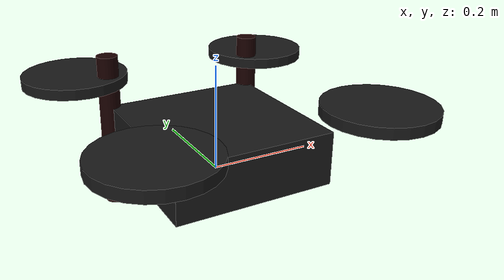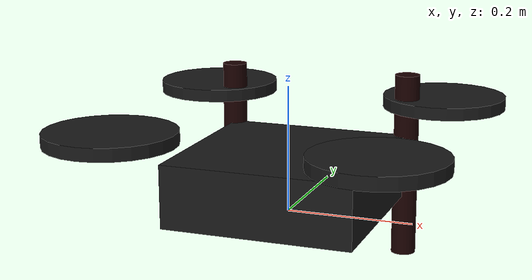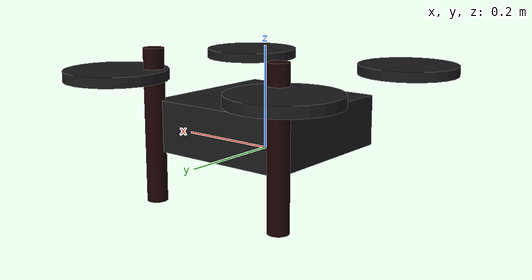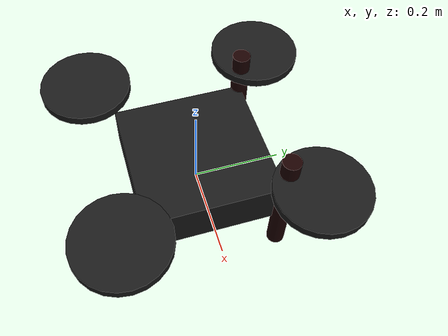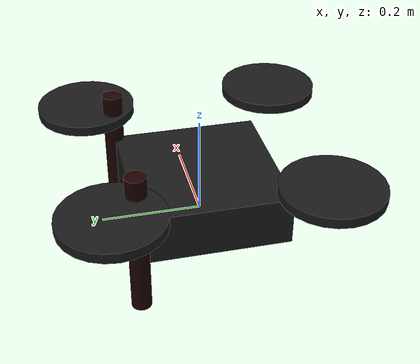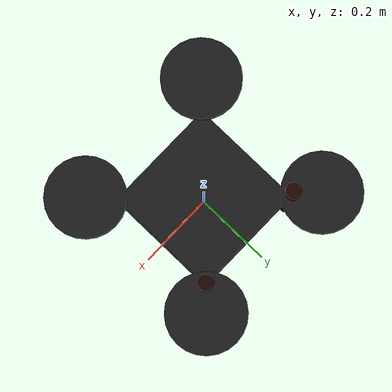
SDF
<?xml version="1.0"?>
<sdf version="1.6">
  <model name="dead_quadcopter">
    <static>true</static>
    <pose>0 0 0.05 0 0 0</pose>

    <link name="base_link">
      <gravity>1</gravity>
      <inertial>
        <mass>1.5</mass>
        <inertia>
          <ixx>0.05</ixx> <!-- Normal inertia so it can tumble -->
          <ixy>0</ixy>
          <ixz>0</ixz>
          <iyy>0.05</iyy>
          <iyz>0</iyz>
          <izz>0.055</izz>
        </inertia>
      </inertial>

      <!-- Body -->
      <collision name="collision_body">
        <geometry>
          <box>
            <size>0.3 0.3 0.1</size>
          </box>
        </geometry>
      </collision>

      <visual name="visual_body">
        <geometry>
          <box>
            <size>0.3 0.3 0.1</size>
          </box>
        </geometry>
        <material>
          <ambient>0.05 0.05 0.05 1</ambient>
          <diffuse>0.1 0.1 0.1 1</diffuse>
          <specular>0.0 0.0 0.0 1</specular>
        </material>
      </visual>

      <!-- Arms visualization -->
      <visual name="visual_arm1">
        <pose>0.15 0.15 0 0 0 0.785</pose>
        <geometry><cylinder><radius>0.02</radius><length>0.3</length></cylinder></geometry>
        <material><ambient>0.1 0.0 0.0 1</ambient><diffuse>0.1 0.0 0.0 1</diffuse></material>
      </visual>

      <visual name="visual_arm2">
        <pose>-0.15 0.15 0 0 0 -0.785</pose>
        <geometry><cylinder><radius>0.02</radius><length>0.3</length></cylinder></geometry>
        <material><ambient>0.1 0.0 0.0 1</ambient><diffuse>0.1 0.0 0.0 1</diffuse></material>
      </visual>

      <!-- Propellers -->
      <visual name="visual_prop1">
        <pose>0.2 0.2 0.1 0 0 0</pose>
        <geometry><cylinder><radius>0.1</radius><length>0.02</length></cylinder></geometry>
        <material><ambient>0.1 0.1 0.1 1</ambient><diffuse>0.1 0.1 0.1 1</diffuse></material>
      </visual>

      <visual name="visual_prop2">
        <pose>-0.2 0.2 0.1 0 0 0</pose>
        <geometry><cylinder><radius>0.1</radius><length>0.02</length></cylinder></geometry>
        <material><ambient>0.1 0.1 0.1 1</ambient><diffuse>0.1 0.1 0.1 1</diffuse></material>
      </visual>

      <visual name="visual_prop3">
        <pose>0.2 -0.2 0.1 0 0 0</pose>
        <geometry><cylinder><radius>0.1</radius><length>0.02</length></cylinder></geometry>
        <material><ambient>0.1 0.1 0.1 1</ambient><diffuse>0.1 0.1 0.1 1</diffuse></material>
      </visual>

      <visual name="visual_prop4">
        <pose>-0.2 -0.2 0.1 0 0 0</pose>
        <geometry><cylinder><radius>0.1</radius><length>0.02</length></cylinder></geometry>
        <material><ambient>0.1 0.1 0.1 1</ambient><diffuse>0.1 0.1 0.1 1</diffuse></material>
      </visual>

    </link>
  </model>
</sdf>
